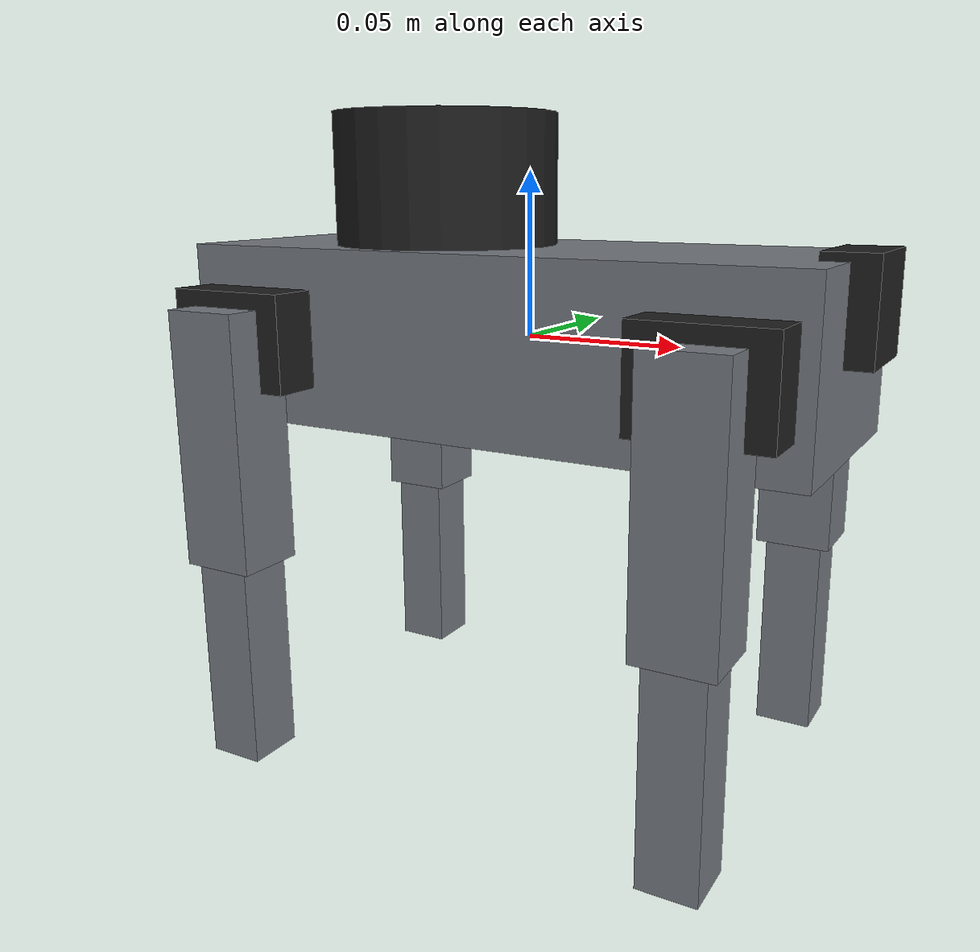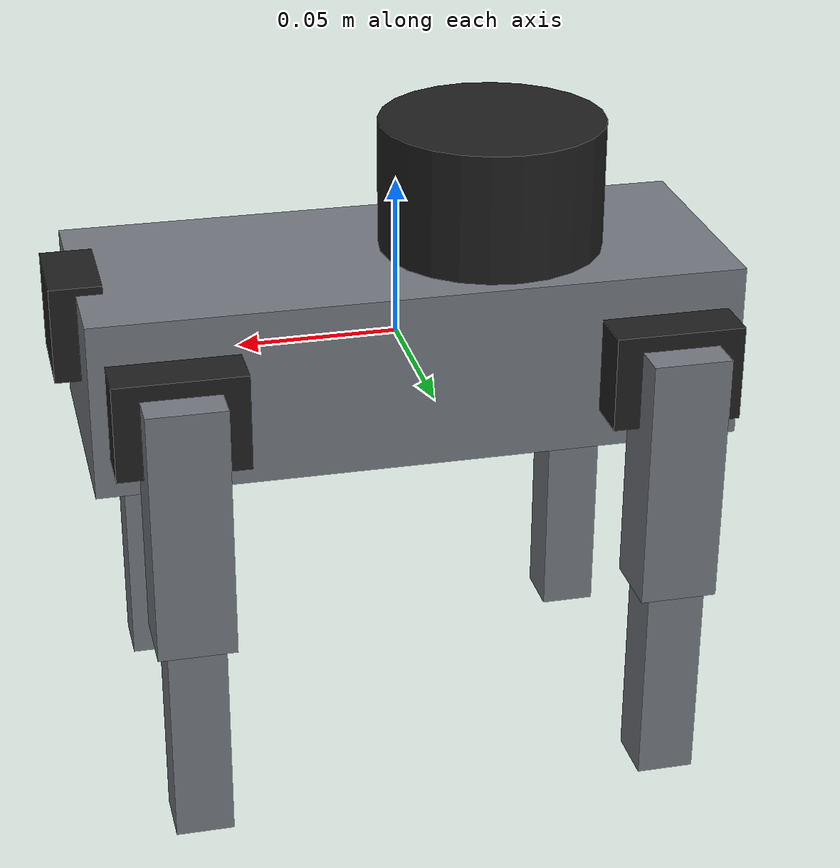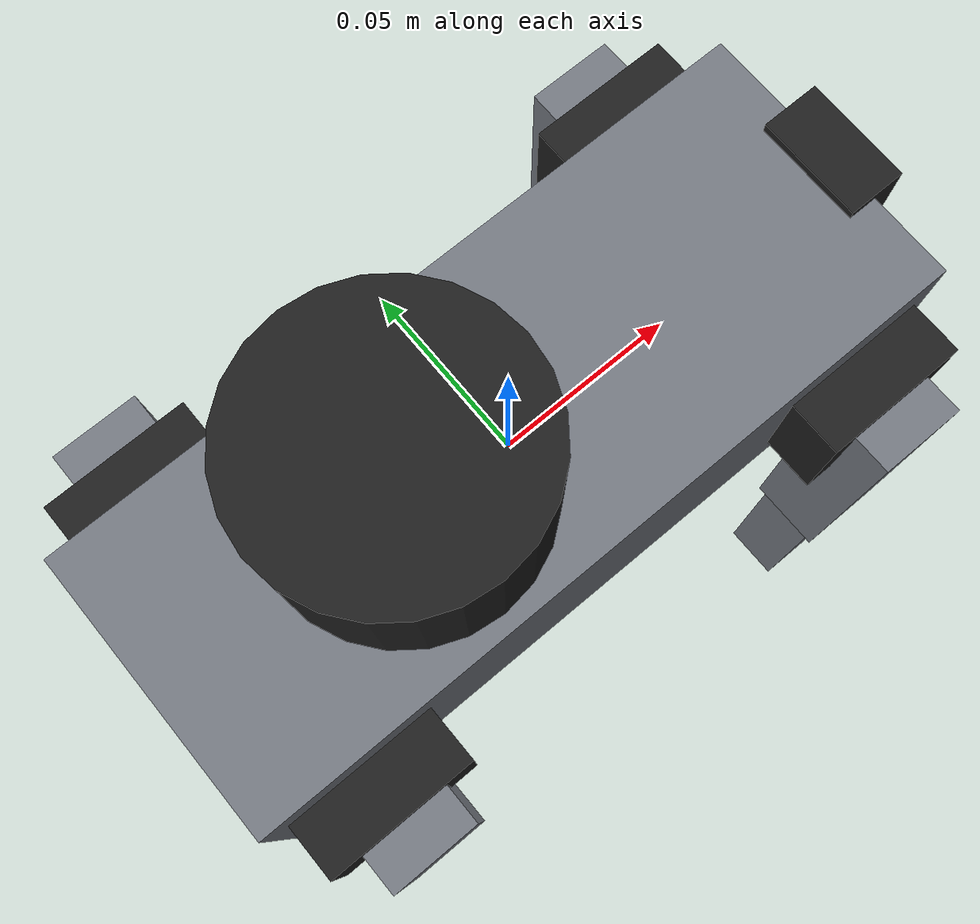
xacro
<?xml version="1.0"?>
<robot name="champ" xmlns:xacro="http://ros.org/wiki/xacro">
  <xacro:arg name="camera" default="false" />

  <!-- ===== 尺寸 (m, kg) ===== -->
  <xacro:property name="hip_x" value="0.075" />          <!-- 前後根關節間距 150 mm 的一半 -->
  <xacro:property name="hip_y" value="0.0225" />         <!-- 左右根關節間距 45 mm 的一半 -->
  <xacro:property name="l1" value="0.0316" />            <!-- 基節 -->
  <xacro:property name="l2" value="0.060" />             <!-- 大腿 -->
  <xacro:property name="l3" value="0.075" />             <!-- 小腿 -->
  <xacro:property name="body_x" value="0.200" />
  <xacro:property name="body_y" value="0.078" />
  <xacro:property name="body_z" value="0.055" />
  <xacro:property name="body_mass" value="0.68" />
  <xacro:property name="hip_mass" value="0.040" />
  <xacro:property name="upper_mass" value="0.060" />
  <xacro:property name="lower_mass" value="0.030" />
  <xacro:property name="servo_effort" value="0.44" />    <!-- 4.5 kg·cm -->
  <xacro:property name="servo_velocity" value="10.5" />  <!-- 0.1 s/60° ≈ 10.5 rad/s -->
  <!-- 生成時的站立姿勢 (須與 config/gait_s1.yaml 的 nominal_height 一致)。
       腳掌在髖關節正下方 stand_h 處, 由三角形 (L2, L3, stand_h) 餘弦定理求大腿與膝關節角度。
       舵機只有 0.44 N·m, 若以關節 0 度 (腿伸直) 生成, 控制器啟動前機身就會趴下而且撐不起來。 -->
  <xacro:property name="stand_h" value="0.105" />
  <xacro:property name="stand_upper" value="${acos((l2*l2 + stand_h*stand_h - l3*l3) / (2*l2*stand_h))}" />
  <xacro:property name="stand_lower" value="${-(pi - acos((l2*l2 + l3*l3 - stand_h*stand_h) / (2*l2*l3)))}" />

  <material name="s1_grey"><color rgba="0.45 0.47 0.50 1.0" /></material>
  <material name="s1_dark"><color rgba="0.12 0.12 0.12 1.0" /></material>

  <xacro:macro name="box_inertial" params="m x y z *origin">
    <inertial>
      <xacro:insert_block name="origin" />
      <mass value="${m}" />
      <inertia ixx="${m*(y*y+z*z)/12}" ixy="0" ixz="0" iyy="${m*(x*x+z*z)/12}" iyz="0" izz="${m*(x*x+y*y)/12}" />
    </inertial>
  </xacro:macro>

  <!-- ===== 機身 ===== -->
  <link name="base_link">
    <visual>
      <geometry><box size="${body_x} ${body_y} ${body_z}" /></geometry>
      <material name="s1_grey" />
    </visual>
    <collision>
      <geometry><box size="${body_x} ${body_y} ${body_z}" /></geometry>
    </collision>
  </link>
  <link name="base_inertia">
    <xacro:box_inertial m="${body_mass}" x="${body_x}" y="${body_y}" z="${body_z}"><origin xyz="0 0 0" /></xacro:box_inertial>
  </link>
  <joint name="base_link_to_base_inertia" type="fixed">
    <parent link="base_link" /><child link="base_inertia" />
  </joint>
  <gazebo reference="base_link"><material>Gazebo/Grey</material></gazebo>

  <!-- ===== 腿 =====
       根關節 (hip, 繞 x 軸) 在機身側面; 往外 L1 是大腿關節 (upper_leg, 繞 y 軸); 往下 L2 是膝關節; 再往下 L3 是腳掌。 -->
  <xacro:macro name="s1_leg" params="leg sx sy">
    <link name="${leg}_hip_debug_link" />
    <joint name="${leg}_debug_joint" type="fixed">
      <parent link="base_link" /><child link="${leg}_hip_debug_link" />
      <origin xyz="${sx*hip_x} ${sy*hip_y} 0" />
    </joint>

    <!-- 基節：根關節舵機 + 支架 -->
    <link name="${leg}_hip_link">
      <visual>
        <origin xyz="0 ${sy*l1/2} 0" />
        <geometry><box size="0.040 ${l1} 0.030" /></geometry>
        <material name="s1_dark" />
      </visual>
      <collision>
        <origin xyz="0 ${sy*l1/2} 0" />
        <geometry><box size="0.040 ${l1} 0.030" /></geometry>
      </collision>
      <xacro:box_inertial m="${hip_mass}" x="0.040" y="${l1}" z="0.030"><origin xyz="0 ${sy*l1/2} 0" /></xacro:box_inertial>
    </link>
    <joint name="${leg}_hip_joint" type="revolute">
      <parent link="base_link" /><child link="${leg}_hip_link" />
      <origin xyz="${sx*hip_x} ${sy*hip_y} 0" />
      <axis xyz="1 0 0" />
      <limit effort="${servo_effort}" velocity="${servo_velocity}" lower="-${pi}" upper="${pi}" />
      <dynamics damping="0.002" />
    </joint>

    <!-- 大腿：舵機 + 鋁支架 -->
    <link name="${leg}_upper_leg_link">
      <visual>
        <origin xyz="0 0 -${l2/2}" />
        <geometry><box size="0.024 0.022 ${l2 + 0.02}" /></geometry>
        <material name="s1_grey" />
      </visual>
      <collision>
        <origin xyz="0 0 -${l2/2}" />
        <geometry><box size="0.024 0.022 ${l2 + 0.02}" /></geometry>
      </collision>
      <xacro:box_inertial m="${upper_mass}" x="0.024" y="0.022" z="${l2}"><origin xyz="0 0 -${l2/2}" /></xacro:box_inertial>
    </link>
    <joint name="${leg}_upper_leg_joint" type="revolute">
      <parent link="${leg}_hip_link" /><child link="${leg}_upper_leg_link" />
      <origin xyz="0 ${sy*l1} 0" />
      <axis xyz="0 1 0" />
      <limit effort="${servo_effort}" velocity="${servo_velocity}" lower="-${pi}" upper="${pi}" />
      <dynamics damping="0.002" />
    </joint>

    <!-- 小腿：平底 box, 底面剛好在腳掌 (foot_link) 高度 -->
    <link name="${leg}_lower_leg_link">
      <visual>
        <origin xyz="0 0 -${l3/2}" />
        <geometry><box size="0.018 0.018 ${l3}" /></geometry>
        <material name="s1_grey" />
      </visual>
      <collision>
        <origin xyz="0 0 -${l3/2}" />
        <geometry><box size="0.018 0.018 ${l3}" /></geometry>
      </collision>
      <xacro:box_inertial m="${lower_mass}" x="0.018" y="0.018" z="${l3}"><origin xyz="0 0 -${l3/2}" /></xacro:box_inertial>
    </link>
    <joint name="${leg}_lower_leg_joint" type="revolute">
      <parent link="${leg}_upper_leg_link" /><child link="${leg}_lower_leg_link" />
      <origin xyz="0 0 -${l2}" />
      <axis xyz="0 1 0" />
      <limit effort="${servo_effort}" velocity="${servo_velocity}" lower="-${pi}" upper="${pi}" />
      <dynamics damping="0.002" />
    </joint>
    <gazebo reference="${leg}_lower_leg_link">
      <mu1>1.5</mu1><mu2>1.5</mu2>
      <kp>1000000.0</kp><kd>50.0</kd>
      <minDepth>0.001</minDepth><maxVel>0.1</maxVel>
      <material>Gazebo/Grey</material>
    </gazebo>
    <gazebo reference="${leg}_upper_leg_link"><material>Gazebo/Grey</material></gazebo>
    <gazebo reference="${leg}_hip_link"><material>Gazebo/DarkGrey</material></gazebo>

    <link name="${leg}_foot_link" />
    <joint name="${leg}_foot_joint" type="fixed">
      <parent link="${leg}_lower_leg_link" /><child link="${leg}_foot_link" />
      <origin xyz="0 0 -${l3}" />
    </joint>

    <xacro:s1_joint_control joint="${leg}_hip_joint" initial="0.0" />
    <xacro:s1_joint_control joint="${leg}_upper_leg_joint" initial="${stand_upper}" />
    <xacro:s1_joint_control joint="${leg}_lower_leg_joint" initial="${stand_lower}" />
  </xacro:macro>

  <xacro:macro name="s1_joint_control" params="joint initial">
    <ros2_control name="${joint}" type="system">
      <hardware><plugin>gazebo_ros2_control/GazeboSystem</plugin></hardware>
      <joint name="${joint}">
        <command_interface name="effort" />
        <state_interface name="position"><param name="initial_value">${initial}</param></state_interface>
        <state_interface name="velocity" />
      </joint>
    </ros2_control>
  </xacro:macro>

  <xacro:s1_leg leg="lf" sx="1" sy="1" />
  <xacro:s1_leg leg="rf" sx="1" sy="-1" />
  <xacro:s1_leg leg="lh" sx="-1" sy="1" />
  <xacro:s1_leg leg="rh" sx="-1" sy="-1" />

  <!-- ===== LiDAR (依 S2 配置, 背上偏後) ===== 外殼不設碰撞; 射線從頂部發出 -->
  <link name="laser_link">
    <visual>
      <origin xyz="0 0 0.02" />
      <geometry><cylinder radius="0.035" length="0.04" /></geometry>
      <material name="s1_dark" />
    </visual>
    <inertial><mass value="0.05" /><inertia ixx="1e-5" ixy="0" ixz="0" iyy="1e-5" iyz="0" izz="1e-5" /></inertial>
  </link>
  <joint name="lidar_joint" type="fixed">
    <parent link="base_link" /><child link="laser_link" />
    <origin xyz="-0.030 0 ${body_z/2}" />
  </joint>
  <gazebo reference="laser_link">
    <material>Gazebo/Black</material>
    <sensor name="laser_sensor" type="ray">
      <always_on>true</always_on>
      <visualize>true</visualize>
      <update_rate>10</update_rate>
      <pose>0 0 0.035 0 0 0</pose>
      <ray>
        <scan><horizontal><samples>360</samples><resolution>1</resolution><min_angle>0</min_angle><max_angle>6.28</max_angle></horizontal></scan>
        <range><min>0.12</min><max>3.5</max><resolution>0.015</resolution></range>
        <noise><type>gaussian</type><mean>0.0</mean><stddev>0.01</stddev></noise>
      </ray>
      <plugin name="laserscan" filename="libgazebo_ros_ray_sensor.so">
        <ros><remapping>~/out:=scan</remapping></ros>
        <output_type>sensor_msgs/LaserScan</output_type>
        <frame_name>laser_link</frame_name>
      </plugin>
    </sensor>
  </gazebo>

  <!-- ===== 相機 (機身前端) ===== 預設不開感測器, 只有外觀 -->
  <link name="camera_link">
    <visual>
      <origin xyz="-0.008 0 0" />
      <geometry><box size="0.016 0.03 0.03" /></geometry>
      <material name="s1_dark" />
    </visual>
    <inertial><mass value="0.01" /><inertia ixx="1e-6" ixy="0" ixz="0" iyy="1e-6" iyz="0" izz="1e-6" /></inertial>
  </link>
  <joint name="camera_joint" type="fixed">
    <parent link="base_link" /><child link="camera_link" />
    <origin xyz="${body_x/2 + 0.008} 0 0.015" />
  </joint>
  <xacro:if value="$(arg camera)">
    <gazebo reference="camera_link">
      <sensor name="camera" type="camera">
        <update_rate>15</update_rate>
        <camera><horizontal_fov>1.8</horizontal_fov><image><width>640</width><height>480</height></image><clip><near>0.02</near><far>10</far></clip></camera>
        <plugin name="camera_plugin" filename="libgazebo_ros_camera.so"><camera_name>cam</camera_name><frame_name>camera_link</frame_name></plugin>
      </sensor>
    </gazebo>
  </xacro:if>

  <!-- ===== IMU (實機為 9 軸 IMU) ===== -->
  <link name="imu_link">
    <inertial><mass value="0.005" /><inertia ixx="1e-7" ixy="0" ixz="0" iyy="1e-7" iyz="0" izz="1e-7" /></inertial>
  </link>
  <joint name="imu_joint" type="fixed">
    <parent link="base_link" /><child link="imu_link" />
  </joint>
  <gazebo reference="imu_link">
    <sensor name="yahboom_imu" type="imu">
      <always_on>true</always_on>
      <update_rate>100</update_rate>
      <imu>
        <angular_velocity>
          <x><noise type="gaussian"><mean>0</mean><stddev>2e-4</stddev></noise></x>
          <y><noise type="gaussian"><mean>0</mean><stddev>2e-4</stddev></noise></y>
          <z><noise type="gaussian"><mean>0</mean><stddev>2e-4</stddev></noise></z>
        </angular_velocity>
        <linear_acceleration>
          <x><noise type="gaussian"><mean>0</mean><stddev>1.7e-2</stddev></noise></x>
          <y><noise type="gaussian"><mean>0</mean><stddev>1.7e-2</stddev></noise></y>
          <z><noise type="gaussian"><mean>0</mean><stddev>1.7e-2</stddev></noise></z>
        </linear_acceleration>
      </imu>
      <plugin name="yahboom_imu_plugin" filename="libgazebo_ros_imu_sensor.so">
        <initial_orientation_as_reference>false</initial_orientation_as_reference>
        <frame_name>imu_link</frame_name>
        <ros><namespace>/imu</namespace><remapping>~/out:=data</remapping></ros>
      </plugin>
    </sensor>
  </gazebo>

  <!-- ===== Gazebo 外掛 ===== -->
  <gazebo>
    <plugin name="yahboomcar_joint_state" filename="libgazebo_ros_joint_state_publisher.so">
      <ros><remapping>~/out:=joint_states</remapping></ros>
      <update_rate>15</update_rate>
      <joint_name>lf_hip_joint</joint_name><joint_name>lf_upper_leg_joint</joint_name><joint_name>lf_lower_leg_joint</joint_name>
      <joint_name>rf_hip_joint</joint_name><joint_name>rf_upper_leg_joint</joint_name><joint_name>rf_lower_leg_joint</joint_name>
      <joint_name>lh_hip_joint</joint_name><joint_name>lh_upper_leg_joint</joint_name><joint_name>lh_lower_leg_joint</joint_name>
      <joint_name>rh_hip_joint</joint_name><joint_name>rh_upper_leg_joint</joint_name><joint_name>rh_lower_leg_joint</joint_name>
    </plugin>
    <!-- 真值位姿 (只給 benchmark 評分與 RL 節點用) -->
    <plugin name="p3d_base_controller" filename="libgazebo_ros_p3d.so">
      <ros><namespace>/demo</namespace><argument>odom:=odom/ground_truth</argument></ros>
      <body_name>base_link</body_name>
      <frame_name>world</frame_name>
      <update_rate>10.0</update_rate>
      <gaussian_noise>0.01</gaussian_noise>
    </plugin>
    <!-- 關節 PID 依 S1 的輕量腿重新調整, 見 /config/ros_control_s1.yaml -->
    <plugin filename="libgazebo_ros2_control.so" name="gazebo_ros2_control">
      <parameters>/config/ros_control_s1.yaml</parameters>
    </plugin>
  </gazebo>
</robot>
